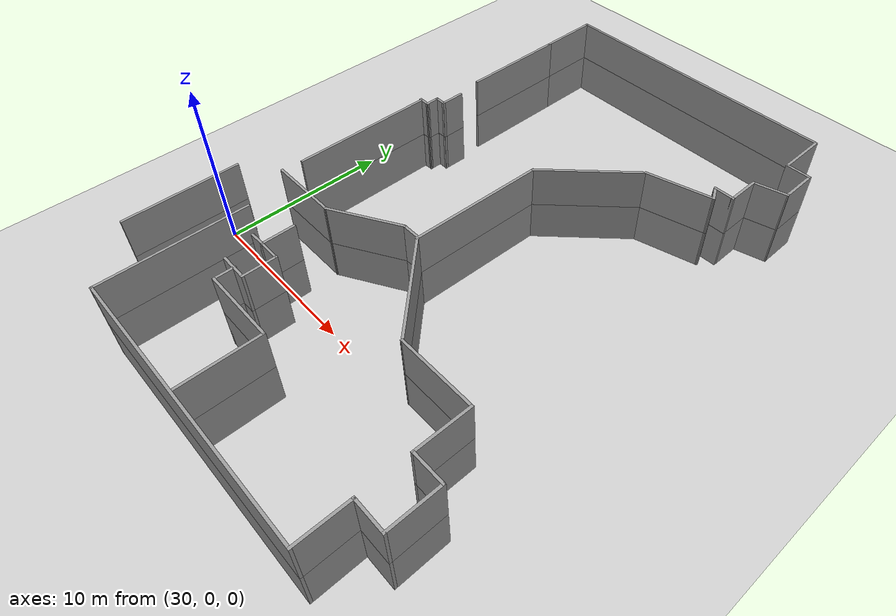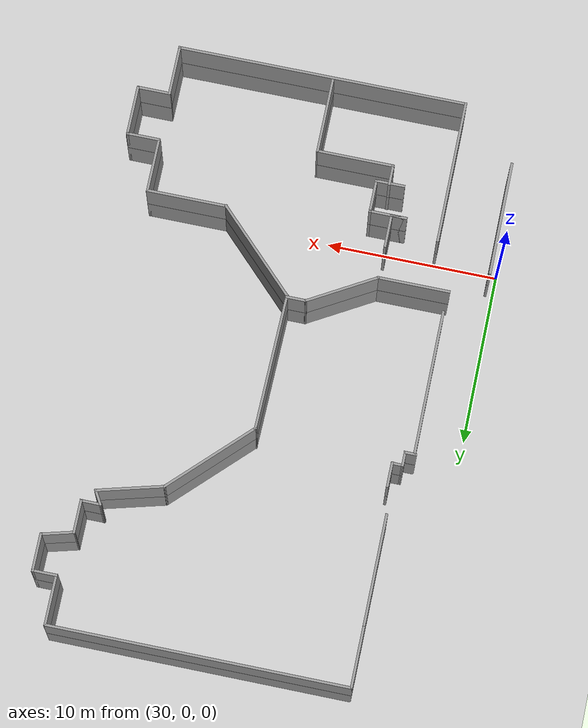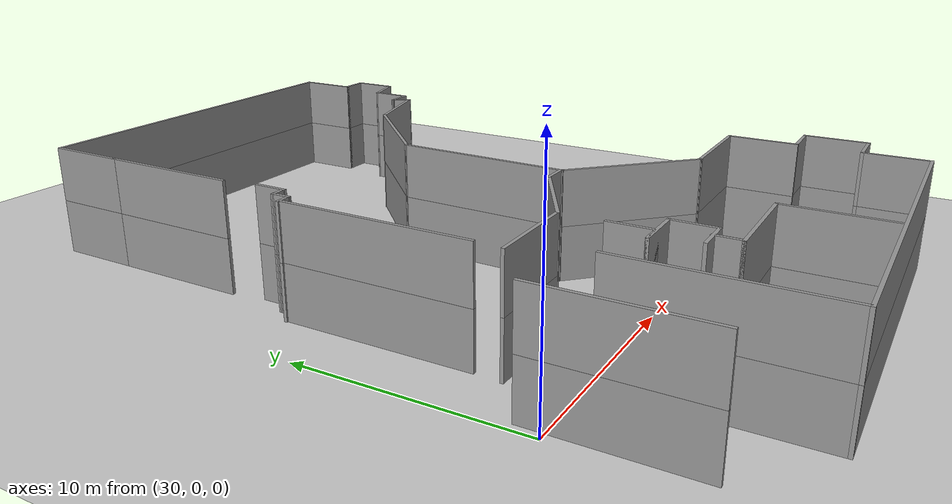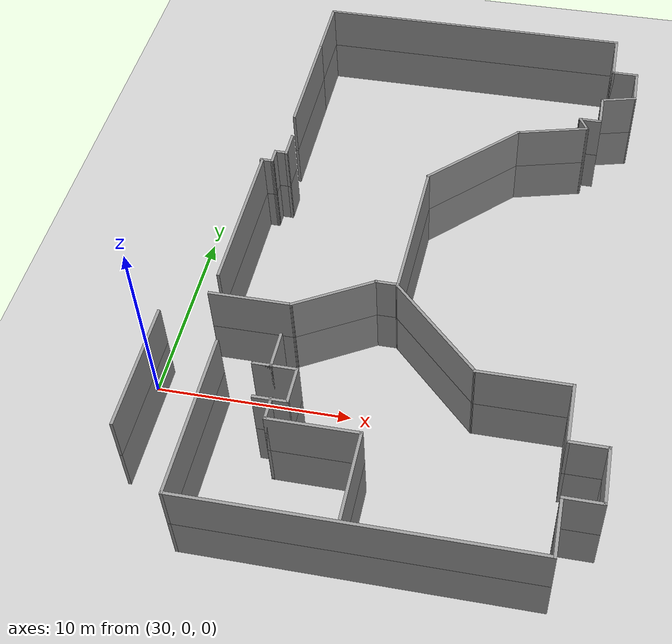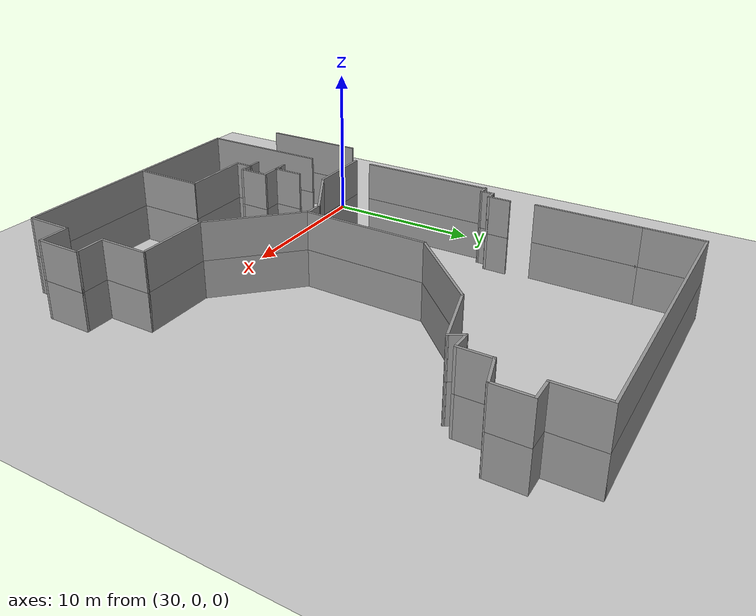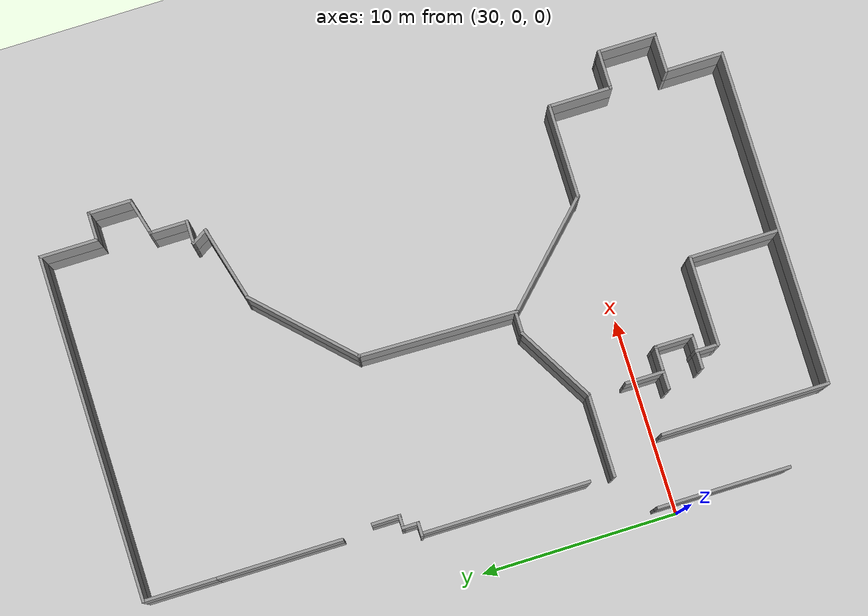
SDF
<sdf version="1.6">
 <world name="default">
  <model name="ground_plane">
   <static>1</static>
   <link name="link">
    <collision name="collision">
     <geometry><plane><normal>0 0 1</normal><size>100 100</size></plane></geometry>
     <surface>
      <contact><collide_bitmask>65535</collide_bitmask></contact>
      <friction><ode><mu>100</mu><mu2>50</mu2></ode></friction>
     </surface>
    </collision>
    <visual name="visual">
     <cast_shadows>0</cast_shadows>
     <geometry><plane><normal>0 0 1</normal><size>100 100</size></plane></geometry>
     <material>
      <script><uri>file://media/materials/scripts/gazebo.material</uri><name>Gazebo/Grey</name></script>
     </material>
    </visual>
   </link>
  </model>
  <model name="bush_refined_2floors">
   <pose>3.42472 8.10808 0 0 -0 0</pose>
   <link name="Wall_10">
    <collision name="Wall_10_Collision">
     <geometry><box><size>2.25 0.15 2.5</size></box></geometry>
     <pose>0 0 1.25 0 -0 0</pose>
    </collision>
    <visual name="Wall_10_Visual">
     <pose>0 0 1.25 0 -0 0</pose>
     <geometry><box><size>2.25 0.15 2.5</size></box></geometry>
     <material>
      <script><uri>file://media/materials/scripts/gazebo.material</uri><name>Gazebo/Grey</name></script>
      <ambient>1 1 1 1</ambient>
     </material>
     <meta><layer>0</layer></meta>
    </visual>
    <pose>48.7353 14.0204 0 0 -0 -1.5708</pose>
   </link>
   <link name="Wall_1036">
    <collision name="Wall_1036_Collision">
     <geometry><box><size>8.5 0.15 2.5</size></box></geometry>
     <pose>0 0 1.25 0 -0 0</pose>
    </collision>
    <visual name="Wall_1036_Visual">
     <pose>0 0 1.25 0 -0 0</pose>
     <geometry><box><size>8.5 0.15 2.5</size></box></geometry>
     <material>
      <script><uri>file://media/materials/scripts/gazebo.material</uri><name>Gazebo/Grey</name></script>
      <ambient>1 1 1 1</ambient>
     </material>
     <meta><layer>1</layer></meta>
    </visual>
    <pose>29.1855 -0.017962 2.5 0 -0 -1.5708</pose>
   </link>
   <link name="Wall_1051">
    <collision name="Wall_1051_Collision">
     <geometry><box><size>6.5 0.15 2.5</size></box></geometry>
     <pose>0 0 1.25 0 -0 0</pose>
    </collision>
    <visual name="Wall_1051_Visual">
     <pose>0 0 1.25 0 -0 0</pose>
     <geometry><box><size>6.5 0.15 2.5</size></box></geometry>
     <material>
      <script><uri>file://media/materials/scripts/gazebo.material</uri><name>Gazebo/Grey</name></script>
      <ambient>1 1 1 1</ambient>
     </material>
     <meta><layer>1</layer></meta>
    </visual>
    <pose>30.0353 11.1454 2.5 0 -0 -1.5708</pose>
   </link>
   <link name="Wall_1052">
    <collision name="Wall_1052_Collision">
     <geometry><box><size>1.5 0.15 2.5</size></box></geometry>
     <pose>0 0 1.25 0 -0 0</pose>
    </collision>
    <visual name="Wall_1052_Visual">
     <pose>0 0 1.25 0 -0 0</pose>
     <geometry><box><size>1.5 0.15 2.5</size></box></geometry>
     <material>
      <script><uri>file://media/materials/scripts/gazebo.material</uri><name>Gazebo/Grey</name></script>
      <ambient>1 1 1 1</ambient>
     </material>
     <meta><layer>1</layer></meta>
    </visual>
    <pose>30.3132 5.66308 2.5 0 -0 -1.5708</pose>
   </link>
   <link name="Wall_1053">
    <collision name="Wall_1053_Collision">
     <geometry><box><size>0.75 0.15 2.5</size></box></geometry>
     <pose>0 0 1.25 0 -0 0</pose>
    </collision>
    <visual name="Wall_1053_Visual">
     <pose>0 0 1.25 0 -0 0</pose>
     <geometry><box><size>0.75 0.15 2.5</size></box></geometry>
     <material>
      <script><uri>file://media/materials/scripts/gazebo.material</uri><name>Gazebo/Grey</name></script>
      <ambient>1 1 1 1</ambient>
     </material>
     <meta><layer>1</layer></meta>
    </visual>
    <pose>30.0132 5.00108 2.5 0 -0 3.14159</pose>
   </link>
   <link name="Wall_1054">
    <collision name="Wall_1054_Collision">
     <geometry><box><size>0.909733 0.15 2.5</size></box></geometry>
     <pose>0 0 1.25 0 -0 0</pose>
    </collision>
    <visual name="Wall_1054_Visual">
     <pose>0 0 1.25 0 -0 0</pose>
     <geometry><box><size>0.909733 0.15 2.5</size></box></geometry>
     <material>
      <script><uri>file://media/materials/scripts/gazebo.material</uri><name>Gazebo/Grey</name></script>
      <ambient>1 1 1 1</ambient>
     </material>
     <meta><layer>1</layer></meta>
    </visual>
    <pose>29.7154 4.62122 2.5 0 -0 -1.56489</pose>
   </link>
   <link name="Wall_1055">
    <collision name="Wall_1055_Collision">
     <geometry><box><size>0.75 0.15 2.5</size></box></geometry>
     <pose>0 0 1.25 0 -0 0</pose>
    </collision>
    <visual name="Wall_1055_Visual">
     <pose>0 0 1.25 0 -0 0</pose>
     <geometry><box><size>0.75 0.15 2.5</size></box></geometry>
     <material>
      <script><uri>file://media/materials/scripts/gazebo.material</uri><name>Gazebo/Grey</name></script>
      <ambient>1 1 1 1</ambient>
     </material>
     <meta><layer>1</layer></meta>
    </visual>
    <pose>29.4177 4.24136 2.5 0 -0 3.14159</pose>
   </link>
   <link name="Wall_1056">
    <collision name="Wall_1056_Collision">
     <geometry><box><size>4.25 0.15 2.5</size></box></geometry>
     <pose>0 0 1.25 0 -0 0</pose>
    </collision>
    <visual name="Wall_1056_Visual">
     <pose>0 0 1.25 0 -0 0</pose>
     <geometry><box><size>4.25 0.15 2.5</size></box></geometry>
     <material>
      <script><uri>file://media/materials/scripts/gazebo.material</uri><name>Gazebo/Grey</name></script>
      <ambient>1 1 1 1</ambient>
     </material>
     <meta><layer>1</layer></meta>
    </visual>
    <pose>31.1465 -5.43039 2.5 0 -0 0</pose>
   </link>
   <link name="Wall_1057">
    <collision name="Wall_1057_Collision">
     <geometry><box><size>4.5 0.15 2.5</size></box></geometry>
     <pose>0 0 1.25 0 -0 0</pose>
    </collision>
    <visual name="Wall_1057_Visual">
     <pose>0 0 1.25 0 -0 0</pose>
     <geometry><box><size>4.5 0.15 2.5</size></box></geometry>
     <material>
      <script><uri>file://media/materials/scripts/gazebo.material</uri><name>Gazebo/Grey</name></script>
      <ambient>1 1 1 1</ambient>
     </material>
     <meta><layer>1</layer></meta>
    </visual>
    <pose>35.0801 -4.3429 2.5 0 -0 0.523599</pose>
   </link>
   <link name="Wall_1058">
    <collision name="Wall_1058_Collision">
     <geometry><box><size>1.25 0.15 2.5</size></box></geometry>
     <pose>0 0 1.25 0 -0 0</pose>
    </collision>
    <visual name="Wall_1058_Visual">
     <pose>0 0 1.25 0 -0 0</pose>
     <geometry><box><size>1.25 0.15 2.5</size></box></geometry>
     <material>
      <script><uri>file://media/materials/scripts/gazebo.material</uri><name>Gazebo/Grey</name></script>
      <ambient>1 1 1 1</ambient>
     </material>
     <meta><layer>1</layer></meta>
    </visual>
    <pose>37.5137 -3.25539 2.5 0 -0 0</pose>
   </link>
   <link name="Wall_1059">
    <collision name="Wall_1059_Collision">
     <geometry><box><size>2 0.15 2.5</size></box></geometry>
     <pose>0 0 1.25 0 -0 0</pose>
    </collision>
    <visual name="Wall_1059_Visual">
     <pose>0 0 1.25 0 -0 0</pose>
     <geometry><box><size>2 0.15 2.5</size></box></geometry>
     <material>
      <script><uri>file://media/materials/scripts/gazebo.material</uri><name>Gazebo/Grey</name></script>
      <ambient>1 1 1 1</ambient>
     </material>
     <meta><layer>1</layer></meta>
    </visual>
    <pose>33.1838 -8.27111 2.5 0 -0 -1.5708</pose>
   </link>
   <link name="Wall_1060">
    <collision name="Wall_1060_Collision">
     <geometry><box><size>1 0.15 2.5</size></box></geometry>
     <pose>0 0 1.25 0 -0 0</pose>
    </collision>
    <visual name="Wall_1060_Visual">
     <pose>0 0 1.25 0 -0 0</pose>
     <geometry><box><size>1 0.15 2.5</size></box></geometry>
     <material>
      <script><uri>file://media/materials/scripts/gazebo.material</uri><name>Gazebo/Grey</name></script>
      <ambient>1 1 1 1</ambient>
     </material>
     <meta><layer>1</layer></meta>
    </visual>
    <pose>32.7588 -9.19612 2.5 0 -0 3.14159</pose>
   </link>
   <link name="Wall_1061">
    <collision name="Wall_1061_Collision">
     <geometry><box><size>2.25 0.15 2.5</size></box></geometry>
     <pose>0 0 1.25 0 -0 0</pose>
    </collision>
    <visual name="Wall_1061_Visual">
     <pose>0 0 1.25 0 -0 0</pose>
     <geometry><box><size>2.25 0.15 2.5</size></box></geometry>
     <material>
      <script><uri>file://media/materials/scripts/gazebo.material</uri><name>Gazebo/Grey</name></script>
      <ambient>1 1 1 1</ambient>
     </material>
     <meta><layer>1</layer></meta>
    </visual>
    <pose>33.3838 -9.19612 2.5 0 -0 0</pose>
   </link>
   <link name="Wall_1062">
    <collision name="Wall_1062_Collision">
     <geometry><box><size>2 0.15 2.5</size></box></geometry>
     <pose>0 0 1.25 0 -0 0</pose>
    </collision>
    <visual name="Wall_1062_Visual">
     <pose>0 0 1.25 0 -0 0</pose>
     <geometry><box><size>2 0.15 2.5</size></box></geometry>
     <material>
      <script><uri>file://media/materials/scripts/gazebo.material</uri><name>Gazebo/Grey</name></script>
      <ambient>1 1 1 1</ambient>
     </material>
     <meta><layer>1</layer></meta>
    </visual>
    <pose>34.4338 -10.1211 2.5 0 -0 -1.5708</pose>
   </link>
   <link name="Wall_1063">
    <collision name="Wall_1063_Collision">
     <geometry><box><size>1.75 0.15 2.5</size></box></geometry>
     <pose>0 0 1.25 0 -0 0</pose>
    </collision>
    <visual name="Wall_1063_Visual">
     <pose>0 0 1.25 0 -0 0</pose>
     <geometry><box><size>1.75 0.15 2.5</size></box></geometry>
     <material>
      <script><uri>file://media/materials/scripts/gazebo.material</uri><name>Gazebo/Grey</name></script>
      <ambient>1 1 1 1</ambient>
     </material>
     <meta><layer>1</layer></meta>
    </visual>
    <pose>33.6338 -11.0461 2.5 0 -0 3.14159</pose>
   </link>
   <link name="Wall_1064">
    <collision name="Wall_1064_Collision">
     <geometry><box><size>1.25 0.15 2.5</size></box></geometry>
     <pose>0 0 1.25 0 -0 0</pose>
    </collision>
    <visual name="Wall_1064_Visual">
     <pose>0 0 1.25 0 -0 0</pose>
     <geometry><box><size>1.25 0.15 2.5</size></box></geometry>
     <material>
      <script><uri>file://media/materials/scripts/gazebo.material</uri><name>Gazebo/Grey</name></script>
      <ambient>1 1 1 1</ambient>
     </material>
     <meta><layer>1</layer></meta>
    </visual>
    <pose>33.668 -11.5623 2.5 0 -0 -1.5708</pose>
   </link>
   <link name="Wall_1065">
    <collision name="Wall_1065_Collision">
     <geometry><box><size>4.5 0.15 2.5</size></box></geometry>
     <pose>0 0 1.25 0 -0 0</pose>
    </collision>
    <visual name="Wall_1065_Visual">
     <pose>0 0 1.25 0 -0 0</pose>
     <geometry><box><size>4.5 0.15 2.5</size></box></geometry>
     <material>
      <script><uri>file://media/materials/scripts/gazebo.material</uri><name>Gazebo/Grey</name></script>
      <ambient>1 1 1 1</ambient>
     </material>
     <meta><layer>1</layer></meta>
    </visual>
    <pose>35.843 -12.1123 2.5 0 -0 0</pose>
   </link>
   <link name="Wall_1066">
    <collision name="Wall_1066_Collision">
     <geometry><box><size>4.5 0.15 2.5</size></box></geometry>
     <pose>0 0 1.25 0 -0 0</pose>
    </collision>
    <visual name="Wall_1066_Visual">
     <pose>0 0 1.25 0 -0 0</pose>
     <geometry><box><size>4.5 0.15 2.5</size></box></geometry>
     <material>
      <script><uri>file://media/materials/scripts/gazebo.material</uri><name>Gazebo/Grey</name></script>
      <ambient>1 1 1 1</ambient>
     </material>
     <meta><layer>1</layer></meta>
    </visual>
    <pose>38.0903 -14.2893 2.5 0 -0 1.5708</pose>
   </link>
   <link name="Wall_11">
    <collision name="Wall_11_Collision">
     <geometry><box><size>2 0.15 2.5</size></box></geometry>
     <pose>0 0 1.25 0 -0 0</pose>
    </collision>
    <visual name="Wall_11_Visual">
     <pose>0 0 1.25 0 -0 0</pose>
     <geometry><box><size>2 0.15 2.5</size></box></geometry>
     <material>
      <script><uri>file://media/materials/scripts/gazebo.material</uri><name>Gazebo/Grey</name></script>
      <ambient>1 1 1 1</ambient>
     </material>
     <meta><layer>0</layer></meta>
    </visual>
    <pose>47.8418 12.7309 0 0 -0 -2.87979</pose>
   </link>
   <link name="Wall_12">
    <collision name="Wall_12_Collision">
     <geometry><box><size>2 0.15 2.5</size></box></geometry>
     <pose>0 0 1.25 0 -0 0</pose>
    </collision>
    <visual name="Wall_12_Visual">
     <pose>0 0 1.25 0 -0 0</pose>
     <geometry><box><size>2 0.15 2.5</size></box></geometry>
     <material>
      <script><uri>file://media/materials/scripts/gazebo.material</uri><name>Gazebo/Grey</name></script>
      <ambient>1 1 1 1</ambient>
     </material>
     <meta><layer>0</layer></meta>
    </visual>
    <pose>46.9483 11.5665 0 0 -0 -1.5708</pose>
   </link>
   <link name="Wall_128">
    <collision name="Wall_128_Collision">
     <geometry><box><size>8.5 0.15 2.5</size></box></geometry>
     <pose>0 0 1.25 0 -0 0</pose>
    </collision>
    <visual name="Wall_128_Visual">
     <pose>0 0 1.25 0 -0 0</pose>
     <geometry><box><size>8.5 0.15 2.5</size></box></geometry>
     <material>
      <script><uri>file://media/materials/scripts/gazebo.material</uri><name>Gazebo/Grey</name></script>
      <ambient>1 1 1 1</ambient>
     </material>
     <meta><layer>0</layer></meta>
    </visual>
    <pose>29.1855 -0.017961 0 0 -0 -1.5708</pose>
   </link>
   <link name="Wall_13">
    <collision name="Wall_13_Collision">
     <geometry><box><size>1.25 0.15 2.5</size></box></geometry>
     <pose>0 0 1.25 0 -0 0</pose>
    </collision>
    <visual name="Wall_13_Visual">
     <pose>0 0 1.25 0 -0 0</pose>
     <geometry><box><size>1.25 0.15 2.5</size></box></geometry>
     <material>
      <script><uri>file://media/materials/scripts/gazebo.material</uri><name>Gazebo/Grey</name></script>
      <ambient>1 1 1 1</ambient>
     </material>
     <meta><layer>0</layer></meta>
    </visual>
    <pose>46.3983 10.6415 0 0 -0 3.14159</pose>
   </link>
   <link name="Wall_14">
    <collision name="Wall_14_Collision">
     <geometry><box><size>1 0.15 2.5</size></box></geometry>
     <pose>0 0 1.25 0 -0 0</pose>
    </collision>
    <visual name="Wall_14_Visual">
     <pose>0 0 1.25 0 -0 0</pose>
     <geometry><box><size>1 0.15 2.5</size></box></geometry>
     <material>
      <script><uri>file://media/materials/scripts/gazebo.material</uri><name>Gazebo/Grey</name></script>
      <ambient>1 1 1 1</ambient>
     </material>
     <meta><layer>0</layer></meta>
    </visual>
    <pose>46.0608 10.2735 0 0 -0 -1.0472</pose>
   </link>
   <link name="Wall_15">
    <collision name="Wall_15_Collision">
     <geometry><box><size>4 0.15 2.5</size></box></geometry>
     <pose>0 0 1.25 0 -0 0</pose>
    </collision>
    <visual name="Wall_15_Visual">
     <pose>0 0 1.25 0 -0 0</pose>
     <geometry><box><size>4 0.15 2.5</size></box></geometry>
     <material>
      <script><uri>file://media/materials/scripts/gazebo.material</uri><name>Gazebo/Grey</name></script>
      <ambient>1 1 1 1</ambient>
     </material>
     <meta><layer>0</layer></meta>
    </visual>
    <pose>44.4139 9.40719 0 0 -0 -2.87979</pose>
   </link>
   <link name="Wall_157">
    <collision name="Wall_157_Collision">
     <geometry><box><size>6.5 0.15 2.5</size></box></geometry>
     <pose>0 0 1.25 0 -0 0</pose>
    </collision>
    <visual name="Wall_157_Visual">
     <pose>0 0 1.25 0 -0 0</pose>
     <geometry><box><size>6.5 0.15 2.5</size></box></geometry>
     <material>
      <script><uri>file://media/materials/scripts/gazebo.material</uri><name>Gazebo/Grey</name></script>
      <ambient>1 1 1 1</ambient>
     </material>
     <meta><layer>0</layer></meta>
    </visual>
    <pose>30.0353 11.1454 0 0 -0 -1.5708</pose>
   </link>
   <link name="Wall_159">
    <collision name="Wall_159_Collision">
     <geometry><box><size>1.5 0.15 2.5</size></box></geometry>
     <pose>0 0 1.25 0 -0 0</pose>
    </collision>
    <visual name="Wall_159_Visual">
     <pose>0 0 1.25 0 -0 0</pose>
     <geometry><box><size>1.5 0.15 2.5</size></box></geometry>
     <material>
      <script><uri>file://media/materials/scripts/gazebo.material</uri><name>Gazebo/Grey</name></script>
      <ambient>1 1 1 1</ambient>
     </material>
     <meta><layer>0</layer></meta>
    </visual>
    <pose>30.3132 5.66308 0 0 -0 -1.5708</pose>
   </link>
   <link name="Wall_16">
    <collision name="Wall_16_Collision">
     <geometry><box><size>6.25 0.15 2.5</size></box></geometry>
     <pose>0 0 1.25 0 -0 0</pose>
    </collision>
    <visual name="Wall_16_Visual">
     <pose>0 0 1.25 0 -0 0</pose>
     <geometry><box><size>6.25 0.15 2.5</size></box></geometry>
     <material>
      <script><uri>file://media/materials/scripts/gazebo.material</uri><name>Gazebo/Grey</name></script>
      <ambient>1 1 1 1</ambient>
     </material>
     <meta><layer>0</layer></meta>
    </visual>
    <pose>40.3978 6.75229 0 0 -0 -2.35619</pose>
   </link>
   <link name="Wall_160">
    <collision name="Wall_160_Collision">
     <geometry><box><size>0.75 0.15 2.5</size></box></geometry>
     <pose>0 0 1.25 0 -0 0</pose>
    </collision>
    <visual name="Wall_160_Visual">
     <pose>0 0 1.25 0 -0 0</pose>
     <geometry><box><size>0.75 0.15 2.5</size></box></geometry>
     <material>
      <script><uri>file://media/materials/scripts/gazebo.material</uri><name>Gazebo/Grey</name></script>
      <ambient>1 1 1 1</ambient>
     </material>
     <meta><layer>0</layer></meta>
    </visual>
    <pose>30.0132 5.00108 0 0 -0 3.14159</pose>
   </link>
   <link name="Wall_161">
    <collision name="Wall_161_Collision">
     <geometry><box><size>0.909733 0.15 2.5</size></box></geometry>
     <pose>0 0 1.25 0 -0 0</pose>
    </collision>
    <visual name="Wall_161_Visual">
     <pose>0 0 1.25 0 -0 0</pose>
     <geometry><box><size>0.909733 0.15 2.5</size></box></geometry>
     <material>
      <script><uri>file://media/materials/scripts/gazebo.material</uri><name>Gazebo/Grey</name></script>
      <ambient>1 1 1 1</ambient>
     </material>
     <meta><layer>0</layer></meta>
    </visual>
    <pose>29.7154 4.62122 0 0 -0 -1.56489</pose>
   </link>
   <link name="Wall_162">
    <collision name="Wall_162_Collision">
     <geometry><box><size>0.75 0.15 2.5</size></box></geometry>
     <pose>0 0 1.25 0 -0 0</pose>
    </collision>
    <visual name="Wall_162_Visual">
     <pose>0 0 1.25 0 -0 0</pose>
     <geometry><box><size>0.75 0.15 2.5</size></box></geometry>
     <material>
      <script><uri>file://media/materials/scripts/gazebo.material</uri><name>Gazebo/Grey</name></script>
      <ambient>1 1 1 1</ambient>
     </material>
     <meta><layer>0</layer></meta>
    </visual>
    <pose>29.4177 4.24136 0 0 -0 3.14159</pose>
   </link>
   <link name="Wall_164">
    <collision name="Wall_164_Collision">
     <geometry><box><size>4.25 0.15 2.5</size></box></geometry>
     <pose>0 0 1.25 0 -0 0</pose>
    </collision>
    <visual name="Wall_164_Visual">
     <pose>0 0 1.25 0 -0 0</pose>
     <geometry><box><size>4.25 0.15 2.5</size></box></geometry>
     <material>
      <script><uri>file://media/materials/scripts/gazebo.material</uri><name>Gazebo/Grey</name></script>
      <ambient>1 1 1 1</ambient>
     </material>
     <meta><layer>0</layer></meta>
    </visual>
    <pose>31.1465 -5.43039 0 0 -0 0</pose>
   </link>
   <link name="Wall_165">
    <collision name="Wall_165_Collision">
     <geometry><box><size>4.5 0.15 2.5</size></box></geometry>
     <pose>0 0 1.25 0 -0 0</pose>
    </collision>
    <visual name="Wall_165_Visual">
     <pose>0 0 1.25 0 -0 0</pose>
     <geometry><box><size>4.5 0.15 2.5</size></box></geometry>
     <material>
      <script><uri>file://media/materials/scripts/gazebo.material</uri><name>Gazebo/Grey</name></script>
      <ambient>1 1 1 1</ambient>
     </material>
     <meta><layer>0</layer></meta>
    </visual>
    <pose>35.0801 -4.3429 0 0 -0 0.523599</pose>
   </link>
   <link name="Wall_166">
    <collision name="Wall_166_Collision">
     <geometry><box><size>1.25 0.15 2.5</size></box></geometry>
     <pose>0 0 1.25 0 -0 0</pose>
    </collision>
    <visual name="Wall_166_Visual">
     <pose>0 0 1.25 0 -0 0</pose>
     <geometry><box><size>1.25 0.15 2.5</size></box></geometry>
     <material>
      <script><uri>file://media/materials/scripts/gazebo.material</uri><name>Gazebo/Grey</name></script>
      <ambient>1 1 1 1</ambient>
     </material>
     <meta><layer>0</layer></meta>
    </visual>
    <pose>37.5137 -3.25539 0 0 -0 0</pose>
   </link>
   <link name="Wall_168">
    <collision name="Wall_168_Collision">
     <geometry><box><size>2 0.15 2.5</size></box></geometry>
     <pose>0 0 1.25 0 -0 0</pose>
    </collision>
    <visual name="Wall_168_Visual">
     <pose>0 0 1.25 0 -0 0</pose>
     <geometry><box><size>2 0.15 2.5</size></box></geometry>
     <material>
      <script><uri>file://media/materials/scripts/gazebo.material</uri><name>Gazebo/Grey</name></script>
      <ambient>1 1 1 1</ambient>
     </material>
     <meta><layer>0</layer></meta>
    </visual>
    <pose>33.1838 -8.27112 0 0 -0 -1.5708</pose>
   </link>
   <link name="Wall_169">
    <collision name="Wall_169_Collision">
     <geometry><box><size>1 0.15 2.5</size></box></geometry>
     <pose>0 0 1.25 0 -0 0</pose>
    </collision>
    <visual name="Wall_169_Visual">
     <pose>0 0 1.25 0 -0 0</pose>
     <geometry><box><size>1 0.15 2.5</size></box></geometry>
     <material>
      <script><uri>file://media/materials/scripts/gazebo.material</uri><name>Gazebo/Grey</name></script>
      <ambient>1 1 1 1</ambient>
     </material>
     <meta><layer>0</layer></meta>
    </visual>
    <pose>32.7588 -9.19612 0 0 -0 3.14159</pose>
   </link>
   <link name="Wall_17">
    <collision name="Wall_17_Collision">
     <geometry><box><size>8.0752 0.15 2.5</size></box></geometry>
     <pose>0 0 1.25 0 -0 0</pose>
    </collision>
    <visual name="Wall_17_Visual">
     <pose>0 0 1.25 0 -0 0</pose>
     <geometry><box><size>8.0752 0.15 2.5</size></box></geometry>
     <material>
      <script><uri>file://media/materials/scripts/gazebo.material</uri><name>Gazebo/Grey</name></script>
      <ambient>1 1 1 1</ambient>
     </material>
     <meta><layer>0</layer></meta>
    </visual>
    <pose>38.1528 0.634001 0 0 -0 -1.5931</pose>
   </link>
   <link name="Wall_170">
    <collision name="Wall_170_Collision">
     <geometry><box><size>2.25 0.15 2.5</size></box></geometry>
     <pose>0 0 1.25 0 -0 0</pose>
    </collision>
    <visual name="Wall_170_Visual">
     <pose>0 0 1.25 0 -0 0</pose>
     <geometry><box><size>2.25 0.15 2.5</size></box></geometry>
     <material>
      <script><uri>file://media/materials/scripts/gazebo.material</uri><name>Gazebo/Grey</name></script>
      <ambient>1 1 1 1</ambient>
     </material>
     <meta><layer>0</layer></meta>
    </visual>
    <pose>33.3838 -9.19612 0 0 -0 0</pose>
   </link>
   <link name="Wall_171">
    <collision name="Wall_171_Collision">
     <geometry><box><size>2 0.15 2.5</size></box></geometry>
     <pose>0 0 1.25 0 -0 0</pose>
    </collision>
    <visual name="Wall_171_Visual">
     <pose>0 0 1.25 0 -0 0</pose>
     <geometry><box><size>2 0.15 2.5</size></box></geometry>
     <material>
      <script><uri>file://media/materials/scripts/gazebo.material</uri><name>Gazebo/Grey</name></script>
      <ambient>1 1 1 1</ambient>
     </material>
     <meta><layer>0</layer></meta>
    </visual>
    <pose>34.4338 -10.1211 0 0 -0 -1.5708</pose>
   </link>
   <link name="Wall_172">
    <collision name="Wall_172_Collision">
     <geometry><box><size>1.75 0.15 2.5</size></box></geometry>
     <pose>0 0 1.25 0 -0 0</pose>
    </collision>
    <visual name="Wall_172_Visual">
     <pose>0 0 1.25 0 -0 0</pose>
     <geometry><box><size>1.75 0.15 2.5</size></box></geometry>
     <material>
      <script><uri>file://media/materials/scripts/gazebo.material</uri><name>Gazebo/Grey</name></script>
      <ambient>1 1 1 1</ambient>
     </material>
     <meta><layer>0</layer></meta>
    </visual>
    <pose>33.6338 -11.0461 0 0 -0 3.14159</pose>
   </link>
   <link name="Wall_174">
    <collision name="Wall_174_Collision">
     <geometry><box><size>1.25 0.15 2.5</size></box></geometry>
     <pose>0 0 1.25 0 -0 0</pose>
    </collision>
    <visual name="Wall_174_Visual">
     <pose>0 0 1.25 0 -0 0</pose>
     <geometry><box><size>1.25 0.15 2.5</size></box></geometry>
     <material>
      <script><uri>file://media/materials/scripts/gazebo.material</uri><name>Gazebo/Grey</name></script>
      <ambient>1 1 1 1</ambient>
     </material>
     <meta><layer>0</layer></meta>
    </visual>
    <pose>33.668 -11.5623 0 0 -0 -1.5708</pose>
   </link>
   <link name="Wall_175">
    <collision name="Wall_175_Collision">
     <geometry><box><size>4.5 0.15 2.5</size></box></geometry>
     <pose>0 0 1.25 0 -0 0</pose>
    </collision>
    <visual name="Wall_175_Visual">
     <pose>0 0 1.25 0 -0 0</pose>
     <geometry><box><size>4.5 0.15 2.5</size></box></geometry>
     <material>
      <script><uri>file://media/materials/scripts/gazebo.material</uri><name>Gazebo/Grey</name></script>
      <ambient>1 1 1 1</ambient>
     </material>
     <meta><layer>0</layer></meta>
    </visual>
    <pose>35.843 -12.1123 0 0 -0 0</pose>
   </link>
   <link name="Wall_177">
    <collision name="Wall_177_Collision">
     <geometry><box><size>4.5 0.15 2.5</size></box></geometry>
     <pose>0 0 1.25 0 -0 0</pose>
    </collision>
    <visual name="Wall_177_Visual">
     <pose>0 0 1.25 0 -0 0</pose>
     <geometry><box><size>4.5 0.15 2.5</size></box></geometry>
     <material>
      <script><uri>file://media/materials/scripts/gazebo.material</uri><name>Gazebo/Grey</name></script>
      <ambient>1 1 1 1</ambient>
     </material>
     <meta><layer>0</layer></meta>
    </visual>
    <pose>38.0903 -14.2893 0 0 -0 1.5708</pose>
   </link>
   <link name="Wall_18">
    <collision name="Wall_18_Collision">
     <geometry><box><size>6.5 0.15 2.5</size></box></geometry>
     <pose>0 0 1.25 0 -0 0</pose>
    </collision>
    <visual name="Wall_18_Visual">
     <pose>0 0 1.25 0 -0 0</pose>
     <geometry><box><size>6.5 0.15 2.5</size></box></geometry>
     <material>
      <script><uri>file://media/materials/scripts/gazebo.material</uri><name>Gazebo/Grey</name></script>
      <ambient>1 1 1 1</ambient>
     </material>
     <meta><layer>0</layer></meta>
    </visual>
    <pose>40.3095 -5.57268 0 0 -0 -0.785398</pose>
   </link>
   <link name="Wall_19">
    <collision name="Wall_19_Collision">
     <geometry><box><size>4.75 0.15 2.5</size></box></geometry>
     <pose>0 0 1.25 0 -0 0</pose>
    </collision>
    <visual name="Wall_19_Visual">
     <pose>0 0 1.25 0 -0 0</pose>
     <geometry><box><size>4.75 0.15 2.5</size></box></geometry>
     <material>
      <script><uri>file://media/materials/scripts/gazebo.material</uri><name>Gazebo/Grey</name></script>
      <ambient>1 1 1 1</ambient>
     </material>
     <meta><layer>0</layer></meta>
    </visual>
    <pose>44.8545 -7.81774 0 0 -0 0</pose>
   </link>
   <link name="Wall_20">
    <collision name="Wall_20_Collision">
     <geometry><box><size>3.25 0.15 2.5</size></box></geometry>
     <pose>0 0 1.25 0 -0 0</pose>
    </collision>
    <visual name="Wall_20_Visual">
     <pose>0 0 1.25 0 -0 0</pose>
     <geometry><box><size>3.25 0.15 2.5</size></box></geometry>
     <material>
      <script><uri>file://media/materials/scripts/gazebo.material</uri><name>Gazebo/Grey</name></script>
      <ambient>1 1 1 1</ambient>
     </material>
     <meta><layer>0</layer></meta>
    </visual>
    <pose>47.1545 -9.36774 0 0 -0 -1.5708</pose>
   </link>
   <link name="Wall_21">
    <collision name="Wall_21_Collision">
     <geometry><box><size>2 0.15 2.5</size></box></geometry>
     <pose>0 0 1.25 0 -0 0</pose>
    </collision>
    <visual name="Wall_21_Visual">
     <pose>0 0 1.25 0 -0 0</pose>
     <geometry><box><size>2 0.15 2.5</size></box></geometry>
     <material>
      <script><uri>file://media/materials/scripts/gazebo.material</uri><name>Gazebo/Grey</name></script>
      <ambient>1 1 1 1</ambient>
     </material>
     <meta><layer>0</layer></meta>
    </visual>
    <pose>48.0795 -10.9177 0 0 -0 0</pose>
   </link>
   <link name="Wall_22">
    <collision name="Wall_22_Collision">
     <geometry><box><size>3 0.15 2.5</size></box></geometry>
     <pose>0 0 1.25 0 -0 0</pose>
    </collision>
    <visual name="Wall_22_Visual">
     <pose>0 0 1.25 0 -0 0</pose>
     <geometry><box><size>3 0.15 2.5</size></box></geometry>
     <material>
      <script><uri>file://media/materials/scripts/gazebo.material</uri><name>Gazebo/Grey</name></script>
      <ambient>1 1 1 1</ambient>
     </material>
     <meta><layer>0</layer></meta>
    </visual>
    <pose>49.0045 -12.3427 0 0 -0 -1.5708</pose>
   </link>
   <link name="Wall_23">
    <collision name="Wall_23_Collision">
     <geometry><box><size>2 0.15 2.5</size></box></geometry>
     <pose>0 0 1.25 0 -0 0</pose>
    </collision>
    <visual name="Wall_23_Visual">
     <pose>0 0 1.25 0 -0 0</pose>
     <geometry><box><size>2 0.15 2.5</size></box></geometry>
     <material>
      <script><uri>file://media/materials/scripts/gazebo.material</uri><name>Gazebo/Grey</name></script>
      <ambient>1 1 1 1</ambient>
     </material>
     <meta><layer>0</layer></meta>
    </visual>
    <pose>48.0795 -13.7677 0 0 -0 3.14159</pose>
   </link>
   <link name="Wall_24">
    <collision name="Wall_24_Collision">
     <geometry><box><size>3 0.15 2.5</size></box></geometry>
     <pose>0 0 1.25 0 -0 0</pose>
    </collision>
    <visual name="Wall_24_Visual">
     <pose>0 0 1.25 0 -0 0</pose>
     <geometry><box><size>3 0.15 2.5</size></box></geometry>
     <material>
      <script><uri>file://media/materials/scripts/gazebo.material</uri><name>Gazebo/Grey</name></script>
      <ambient>1 1 1 1</ambient>
     </material>
     <meta><layer>0</layer></meta>
    </visual>
    <pose>47.1545 -15.1927 0 0 -0 -1.5708</pose>
   </link>
   <link name="Wall_25">
    <collision name="Wall_25_Collision">
     <geometry><box><size>17 0.15 2.5</size></box></geometry>
     <pose>0 0 1.25 0 -0 0</pose>
    </collision>
    <visual name="Wall_25_Visual">
     <pose>0 0 1.25 0 -0 0</pose>
     <geometry><box><size>17 0.15 2.5</size></box></geometry>
     <material>
      <script><uri>file://media/materials/scripts/gazebo.material</uri><name>Gazebo/Grey</name></script>
      <ambient>1 1 1 1</ambient>
     </material>
     <meta><layer>0</layer></meta>
    </visual>
    <pose>38.7295 -16.6177 0 0 -0 3.14159</pose>
   </link>
   <link name="Wall_26">
    <collision name="Wall_26_Collision">
     <geometry><box><size>8.5 0.15 2.5</size></box></geometry>
     <pose>0 0 1.25 0 -0 0</pose>
    </collision>
    <visual name="Wall_26_Visual">
     <pose>0 0 1.25 0 -0 0</pose>
     <geometry><box><size>8.5 0.15 2.5</size></box></geometry>
     <material>
      <script><uri>file://media/materials/scripts/gazebo.material</uri><name>Gazebo/Grey</name></script>
      <ambient>1 1 1 1</ambient>
     </material>
     <meta><layer>0</layer></meta>
    </visual>
    <pose>30.3045 -12.4427 0 0 -0 1.5708</pose>
   </link>
   <link name="Wall_6">
    <collision name="Wall_6_Collision">
     <geometry><box><size>3.75 0.15 2.5</size></box></geometry>
     <pose>0 0 1.25 0 -0 0</pose>
    </collision>
    <visual name="Wall_6_Visual">
     <pose>0 0 1.25 0 -0 0</pose>
     <geometry><box><size>3.75 0.15 2.5</size></box></geometry>
     <material>
      <script><uri>file://media/materials/scripts/gazebo.material</uri><name>Gazebo/Grey</name></script>
      <ambient>1 1 1 1</ambient>
     </material>
     <meta><layer>0</layer></meta>
    </visual>
    <pose>30.0353 16.1204 0 0 -0 1.5708</pose>
   </link>
   <link name="Wall_61">
    <collision name="Wall_61_Collision">
     <geometry><box><size>6.75 0.15 2.5</size></box></geometry>
     <pose>0 0 1.25 0 -0 0</pose>
    </collision>
    <visual name="Wall_61_Visual">
     <pose>0 0 1.25 0 -0 0</pose>
     <geometry><box><size>6.75 0.15 2.5</size></box></geometry>
     <material>
      <script><uri>file://media/materials/scripts/gazebo.material</uri><name>Gazebo/Grey</name></script>
      <ambient>1 1 1 1</ambient>
     </material>
     <meta><layer>0</layer></meta>
    </visual>
    <pose>27.016 -10.3022 0 0 -0 -1.5708</pose>
   </link>
   <link name="Wall_7">
    <collision name="Wall_7_Collision">
     <geometry><box><size>17.5 0.15 2.5</size></box></geometry>
     <pose>0 0 1.25 0 -0 0</pose>
    </collision>
    <visual name="Wall_7_Visual">
     <pose>0 0 1.25 0 -0 0</pose>
     <geometry><box><size>17.5 0.15 2.5</size></box></geometry>
     <material>
      <script><uri>file://media/materials/scripts/gazebo.material</uri><name>Gazebo/Grey</name></script>
      <ambient>1 1 1 1</ambient>
     </material>
     <meta><layer>0</layer></meta>
    </visual>
    <pose>38.7103 17.9204 0 0 -0 0</pose>
   </link>
   <link name="Wall_8">
    <collision name="Wall_8_Collision">
     <geometry><box><size>3 0.15 2.5</size></box></geometry>
     <pose>0 0 1.25 0 -0 0</pose>
    </collision>
    <visual name="Wall_8_Visual">
     <pose>0 0 1.25 0 -0 0</pose>
     <geometry><box><size>3 0.15 2.5</size></box></geometry>
     <material>
      <script><uri>file://media/materials/scripts/gazebo.material</uri><name>Gazebo/Grey</name></script>
      <ambient>1 1 1 1</ambient>
     </material>
     <meta><layer>0</layer></meta>
    </visual>
    <pose>47.3853 16.4954 0 0 -0 -1.5708</pose>
   </link>
   <link name="Wall_9">
    <collision name="Wall_9_Collision">
     <geometry><box><size>1.5 0.15 2.5</size></box></geometry>
     <pose>0 0 1.25 0 -0 0</pose>
    </collision>
    <visual name="Wall_9_Visual">
     <pose>0 0 1.25 0 -0 0</pose>
     <geometry><box><size>1.5 0.15 2.5</size></box></geometry>
     <material>
      <script><uri>file://media/materials/scripts/gazebo.material</uri><name>Gazebo/Grey</name></script>
      <ambient>1 1 1 1</ambient>
     </material>
     <meta><layer>0</layer></meta>
    </visual>
    <pose>48.0603 15.0704 0 0 -0 0</pose>
   </link>
   <link name="Wall_953">
    <collision name="Wall_953_Collision">
     <geometry><box><size>3.75 0.15 2.5</size></box></geometry>
     <pose>0 0 1.25 0 -0 0</pose>
    </collision>
    <visual name="Wall_953_Visual">
     <pose>0 0 1.25 0 -0 0</pose>
     <geometry><box><size>3.75 0.15 2.5</size></box></geometry>
     <material>
      <script><uri>file://media/materials/scripts/gazebo.material</uri><name>Gazebo/Grey</name></script>
      <ambient>1 1 1 1</ambient>
     </material>
     <meta><layer>1</layer></meta>
    </visual>
    <pose>30.0353 16.1204 2.5 0 -0 1.5708</pose>
   </link>
   <link name="Wall_954">
    <collision name="Wall_954_Collision">
     <geometry><box><size>17.5 0.15 2.5</size></box></geometry>
     <pose>0 0 1.25 0 -0 0</pose>
    </collision>
    <visual name="Wall_954_Visual">
     <pose>0 0 1.25 0 -0 0</pose>
     <geometry><box><size>17.5 0.15 2.5</size></box></geometry>
     <material>
      <script><uri>file://media/materials/scripts/gazebo.material</uri><name>Gazebo/Grey</name></script>
      <ambient>1 1 1 1</ambient>
     </material>
     <meta><layer>1</layer></meta>
    </visual>
    <pose>38.7103 17.9204 2.5 0 -0 0</pose>
   </link>
   <link name="Wall_955">
    <collision name="Wall_955_Collision">
     <geometry><box><size>3 0.15 2.5</size></box></geometry>
     <pose>0 0 1.25 0 -0 0</pose>
    </collision>
    <visual name="Wall_955_Visual">
     <pose>0 0 1.25 0 -0 0</pose>
     <geometry><box><size>3 0.15 2.5</size></box></geometry>
     <material>
      <script><uri>file://media/materials/scripts/gazebo.material</uri><name>Gazebo/Grey</name></script>
      <ambient>1 1 1 1</ambient>
     </material>
     <meta><layer>1</layer></meta>
    </visual>
    <pose>47.3853 16.4954 2.5 0 -0 -1.5708</pose>
   </link>
   <link name="Wall_956">
    <collision name="Wall_956_Collision">
     <geometry><box><size>1.5 0.15 2.5</size></box></geometry>
     <pose>0 0 1.25 0 -0 0</pose>
    </collision>
    <visual name="Wall_956_Visual">
     <pose>0 0 1.25 0 -0 0</pose>
     <geometry><box><size>1.5 0.15 2.5</size></box></geometry>
     <material>
      <script><uri>file://media/materials/scripts/gazebo.material</uri><name>Gazebo/Grey</name></script>
      <ambient>1 1 1 1</ambient>
     </material>
     <meta><layer>1</layer></meta>
    </visual>
    <pose>48.0603 15.0704 2.5 0 -0 0</pose>
   </link>
   <link name="Wall_957">
    <collision name="Wall_957_Collision">
     <geometry><box><size>2.25 0.15 2.5</size></box></geometry>
     <pose>0 0 1.25 0 -0 0</pose>
    </collision>
    <visual name="Wall_957_Visual">
     <pose>0 0 1.25 0 -0 0</pose>
     <geometry><box><size>2.25 0.15 2.5</size></box></geometry>
     <material>
      <script><uri>file://media/materials/scripts/gazebo.material</uri><name>Gazebo/Grey</name></script>
      <ambient>1 1 1 1</ambient>
     </material>
     <meta><layer>1</layer></meta>
    </visual>
    <pose>48.7353 14.0204 2.5 0 -0 -1.5708</pose>
   </link>
   <link name="Wall_958">
    <collision name="Wall_958_Collision">
     <geometry><box><size>2 0.15 2.5</size></box></geometry>
     <pose>0 0 1.25 0 -0 0</pose>
    </collision>
    <visual name="Wall_958_Visual">
     <pose>0 0 1.25 0 -0 0</pose>
     <geometry><box><size>2 0.15 2.5</size></box></geometry>
     <material>
      <script><uri>file://media/materials/scripts/gazebo.material</uri><name>Gazebo/Grey</name></script>
      <ambient>1 1 1 1</ambient>
     </material>
     <meta><layer>1</layer></meta>
    </visual>
    <pose>47.8418 12.7309 2.5 0 -0 -2.87979</pose>
   </link>
   <link name="Wall_959">
    <collision name="Wall_959_Collision">
     <geometry><box><size>2 0.15 2.5</size></box></geometry>
     <pose>0 0 1.25 0 -0 0</pose>
    </collision>
    <visual name="Wall_959_Visual">
     <pose>0 0 1.25 0 -0 0</pose>
     <geometry><box><size>2 0.15 2.5</size></box></geometry>
     <material>
      <script><uri>file://media/materials/scripts/gazebo.material</uri><name>Gazebo/Grey</name></script>
      <ambient>1 1 1 1</ambient>
     </material>
     <meta><layer>1</layer></meta>
    </visual>
    <pose>46.9483 11.5665 2.5 0 -0 -1.5708</pose>
   </link>
   <link name="Wall_960">
    <collision name="Wall_960_Collision">
     <geometry><box><size>1.25 0.15 2.5</size></box></geometry>
     <pose>0 0 1.25 0 -0 0</pose>
    </collision>
    <visual name="Wall_960_Visual">
     <pose>0 0 1.25 0 -0 0</pose>
     <geometry><box><size>1.25 0.15 2.5</size></box></geometry>
     <material>
      <script><uri>file://media/materials/scripts/gazebo.material</uri><name>Gazebo/Grey</name></script>
      <ambient>1 1 1 1</ambient>
     </material>
     <meta><layer>1</layer></meta>
    </visual>
    <pose>46.3983 10.6415 2.5 0 -0 3.14159</pose>
   </link>
   <link name="Wall_961">
    <collision name="Wall_961_Collision">
     <geometry><box><size>1 0.15 2.5</size></box></geometry>
     <pose>0 0 1.25 0 -0 0</pose>
    </collision>
    <visual name="Wall_961_Visual">
     <pose>0 0 1.25 0 -0 0</pose>
     <geometry><box><size>1 0.15 2.5</size></box></geometry>
     <material>
      <script><uri>file://media/materials/scripts/gazebo.material</uri><name>Gazebo/Grey</name></script>
      <ambient>1 1 1 1</ambient>
     </material>
     <meta><layer>1</layer></meta>
    </visual>
    <pose>46.0608 10.2735 2.5 0 -0 -1.0472</pose>
   </link>
   <link name="Wall_962">
    <collision name="Wall_962_Collision">
     <geometry><box><size>4 0.15 2.5</size></box></geometry>
     <pose>0 0 1.25 0 -0 0</pose>
    </collision>
    <visual name="Wall_962_Visual">
     <pose>0 0 1.25 0 -0 0</pose>
     <geometry><box><size>4 0.15 2.5</size></box></geometry>
     <material>
      <script><uri>file://media/materials/scripts/gazebo.material</uri><name>Gazebo/Grey</name></script>
      <ambient>1 1 1 1</ambient>
     </material>
     <meta><layer>1</layer></meta>
    </visual>
    <pose>44.4139 9.40719 2.5 0 -0 -2.87979</pose>
   </link>
   <link name="Wall_963">
    <collision name="Wall_963_Collision">
     <geometry><box><size>6.25 0.15 2.5</size></box></geometry>
     <pose>0 0 1.25 0 -0 0</pose>
    </collision>
    <visual name="Wall_963_Visual">
     <pose>0 0 1.25 0 -0 0</pose>
     <geometry><box><size>6.25 0.15 2.5</size></box></geometry>
     <material>
      <script><uri>file://media/materials/scripts/gazebo.material</uri><name>Gazebo/Grey</name></script>
      <ambient>1 1 1 1</ambient>
     </material>
     <meta><layer>1</layer></meta>
    </visual>
    <pose>40.3978 6.75229 2.5 0 -0 -2.35619</pose>
   </link>
   <link name="Wall_964">
    <collision name="Wall_964_Collision">
     <geometry><box><size>8.0752 0.15 2.5</size></box></geometry>
     <pose>0 0 1.25 0 -0 0</pose>
    </collision>
    <visual name="Wall_964_Visual">
     <pose>0 0 1.25 0 -0 0</pose>
     <geometry><box><size>8.0752 0.15 2.5</size></box></geometry>
     <material>
      <script><uri>file://media/materials/scripts/gazebo.material</uri><name>Gazebo/Grey</name></script>
      <ambient>1 1 1 1</ambient>
     </material>
     <meta><layer>1</layer></meta>
    </visual>
    <pose>38.1528 0.634001 2.5 0 -0 -1.5931</pose>
   </link>
   <link name="Wall_965">
    <collision name="Wall_965_Collision">
     <geometry><box><size>6.5 0.15 2.5</size></box></geometry>
     <pose>0 0 1.25 0 -0 0</pose>
    </collision>
    <visual name="Wall_965_Visual">
     <pose>0 0 1.25 0 -0 0</pose>
     <geometry><box><size>6.5 0.15 2.5</size></box></geometry>
     <material>
      <script><uri>file://media/materials/scripts/gazebo.material</uri><name>Gazebo/Grey</name></script>
      <ambient>1 1 1 1</ambient>
     </material>
     <meta><layer>1</layer></meta>
    </visual>
    <pose>40.3095 -5.57268 2.5 0 -0 -0.785398</pose>
   </link>
   <link name="Wall_966">
    <collision name="Wall_966_Collision">
     <geometry><box><size>4.75 0.15 2.5</size></box></geometry>
     <pose>0 0 1.25 0 -0 0</pose>
    </collision>
    <visual name="Wall_966_Visual">
     <pose>0 0 1.25 0 -0 0</pose>
     <geometry><box><size>4.75 0.15 2.5</size></box></geometry>
     <material>
      <script><uri>file://media/materials/scripts/gazebo.material</uri><name>Gazebo/Grey</name></script>
      <ambient>1 1 1 1</ambient>
     </material>
     <meta><layer>1</layer></meta>
    </visual>
    <pose>44.8545 -7.81774 2.5 0 -0 0</pose>
   </link>
   <link name="Wall_967">
    <collision name="Wall_967_Collision">
     <geometry><box><size>3.25 0.15 2.5</size></box></geometry>
     <pose>0 0 1.25 0 -0 0</pose>
    </collision>
    <visual name="Wall_967_Visual">
     <pose>0 0 1.25 0 -0 0</pose>
     <geometry><box><size>3.25 0.15 2.5</size></box></geometry>
     <material>
      <script><uri>file://media/materials/scripts/gazebo.material</uri><name>Gazebo/Grey</name></script>
      <ambient>1 1 1 1</ambient>
     </material>
     <meta><layer>1</layer></meta>
    </visual>
    <pose>47.1545 -9.36774 2.5 0 -0 -1.5708</pose>
   </link>
   <link name="Wall_968">
    <collision name="Wall_968_Collision">
     <geometry><box><size>2 0.15 2.5</size></box></geometry>
     <pose>0 0 1.25 0 -0 0</pose>
    </collision>
    <visual name="Wall_968_Visual">
     <pose>0 0 1.25 0 -0 0</pose>
     <geometry><box><size>2 0.15 2.5</size></box></geometry>
     <material>
      <script><uri>file://media/materials/scripts/gazebo.material</uri><name>Gazebo/Grey</name></script>
      <ambient>1 1 1 1</ambient>
     </material>
     <meta><layer>1</layer></meta>
    </visual>
    <pose>48.0795 -10.9177 2.5 0 -0 0</pose>
   </link>
   <link name="Wall_969">
    <collision name="Wall_969_Collision">
     <geometry><box><size>3 0.15 2.5</size></box></geometry>
     <pose>0 0 1.25 0 -0 0</pose>
    </collision>
    <visual name="Wall_969_Visual">
     <pose>0 0 1.25 0 -0 0</pose>
     <geometry><box><size>3 0.15 2.5</size></box></geometry>
     <material>
      <script><uri>file://media/materials/scripts/gazebo.material</uri><name>Gazebo/Grey</name></script>
      <ambient>1 1 1 1</ambient>
     </material>
     <meta><layer>1</layer></meta>
    </visual>
    <pose>49.0045 -12.3427 2.5 0 -0 -1.5708</pose>
   </link>
   <link name="Wall_970">
    <collision name="Wall_970_Collision">
     <geometry><box><size>2 0.15 2.5</size></box></geometry>
     <pose>0 0 1.25 0 -0 0</pose>
    </collision>
    <visual name="Wall_970_Visual">
     <pose>0 0 1.25 0 -0 0</pose>
     <geometry><box><size>2 0.15 2.5</size></box></geometry>
     <material>
      <script><uri>file://media/materials/scripts/gazebo.material</uri><name>Gazebo/Grey</name></script>
      <ambient>1 1 1 1</ambient>
     </material>
     <meta><layer>1</layer></meta>
    </visual>
    <pose>48.0795 -13.7677 2.5 0 -0 3.14159</pose>
   </link>
   <link name="Wall_971">
    <collision name="Wall_971_Collision">
     <geometry><box><size>3 0.15 2.5</size></box></geometry>
     <pose>0 0 1.25 0 -0 0</pose>
    </collision>
    <visual name="Wall_971_Visual">
     <pose>0 0 1.25 0 -0 0</pose>
     <geometry><box><size>3 0.15 2.5</size></box></geometry>
     <material>
      <script><uri>file://media/materials/scripts/gazebo.material</uri><name>Gazebo/Grey</name></script>
      <ambient>1 1 1 1</ambient>
     </material>
     <meta><layer>1</layer></meta>
    </visual>
    <pose>47.1545 -15.1927 2.5 0 -0 -1.5708</pose>
   </link>
   <link name="Wall_972">
    <collision name="Wall_972_Collision">
     <geometry><box><size>17 0.15 2.5</size></box></geometry>
     <pose>0 0 1.25 0 -0 0</pose>
    </collision>
    <visual name="Wall_972_Visual">
     <pose>0 0 1.25 0 -0 0</pose>
     <geometry><box><size>17 0.15 2.5</size></box></geometry>
     <material>
      <script><uri>file://media/materials/scripts/gazebo.material</uri><name>Gazebo/Grey</name></script>
      <ambient>1 1 1 1</ambient>
     </material>
     <meta><layer>1</layer></meta>
    </visual>
    <pose>38.7295 -16.6177 2.5 0 -0 3.14159</pose>
   </link>
   <link name="Wall_973">
    <collision name="Wall_973_Collision">
     <geometry><box><size>8.5 0.15 2.5</size></box></geometry>
     <pose>0 0 1.25 0 -0 0</pose>
    </collision>
    <visual name="Wall_973_Visual">
     <pose>0 0 1.25 0 -0 0</pose>
     <geometry><box><size>8.5 0.15 2.5</size></box></geometry>
     <material>
      <script><uri>file://media/materials/scripts/gazebo.material</uri><name>Gazebo/Grey</name></script>
      <ambient>1 1 1 1</ambient>
     </material>
     <meta><layer>1</layer></meta>
    </visual>
    <pose>30.3045 -12.4427 2.5 0 -0 1.5708</pose>
   </link>
   <link name="Wall_993">
    <collision name="Wall_993_Collision">
     <geometry><box><size>6.75 0.15 2.5</size></box></geometry>
     <pose>0 0 1.25 0 -0 0</pose>
    </collision>
    <visual name="Wall_993_Visual">
     <pose>0 0 1.25 0 -0 0</pose>
     <geometry><box><size>6.75 0.15 2.5</size></box></geometry>
     <material>
      <script><uri>file://media/materials/scripts/gazebo.material</uri><name>Gazebo/Grey</name></script>
      <ambient>1 1 1 1</ambient>
     </material>
     <meta><layer>1</layer></meta>
    </visual>
    <pose>27.016 -10.3022 2.5 0 -0 -1.5708</pose>
   </link>
   <static>1</static>
  </model>
 </world>
</sdf>
